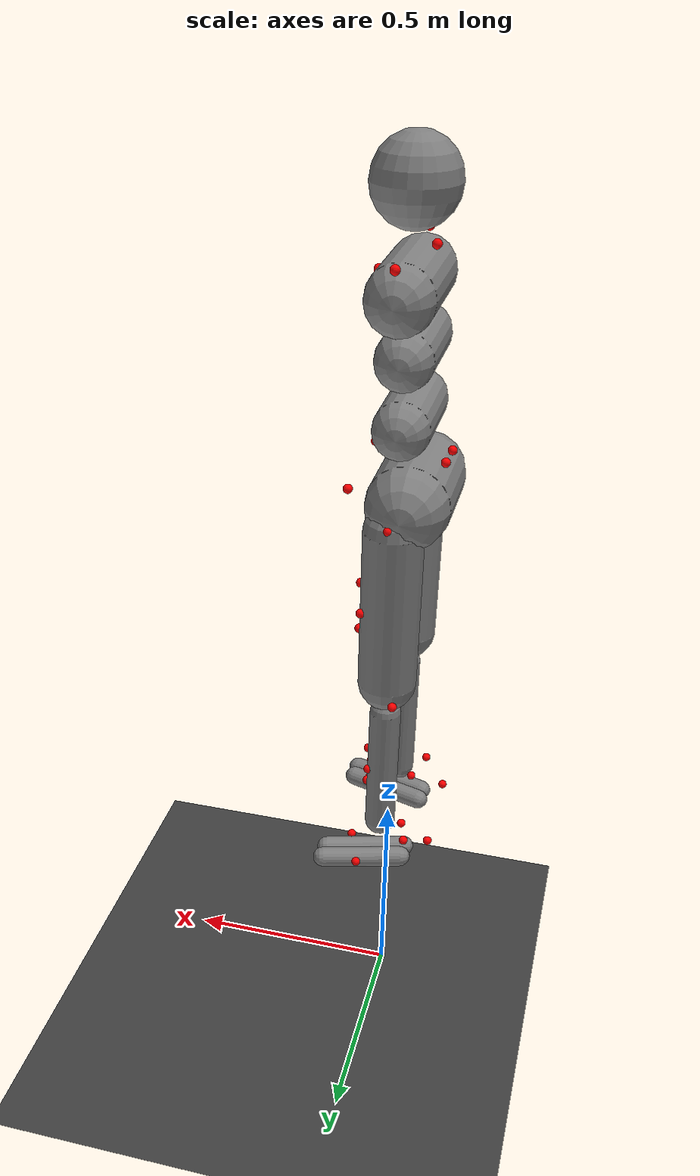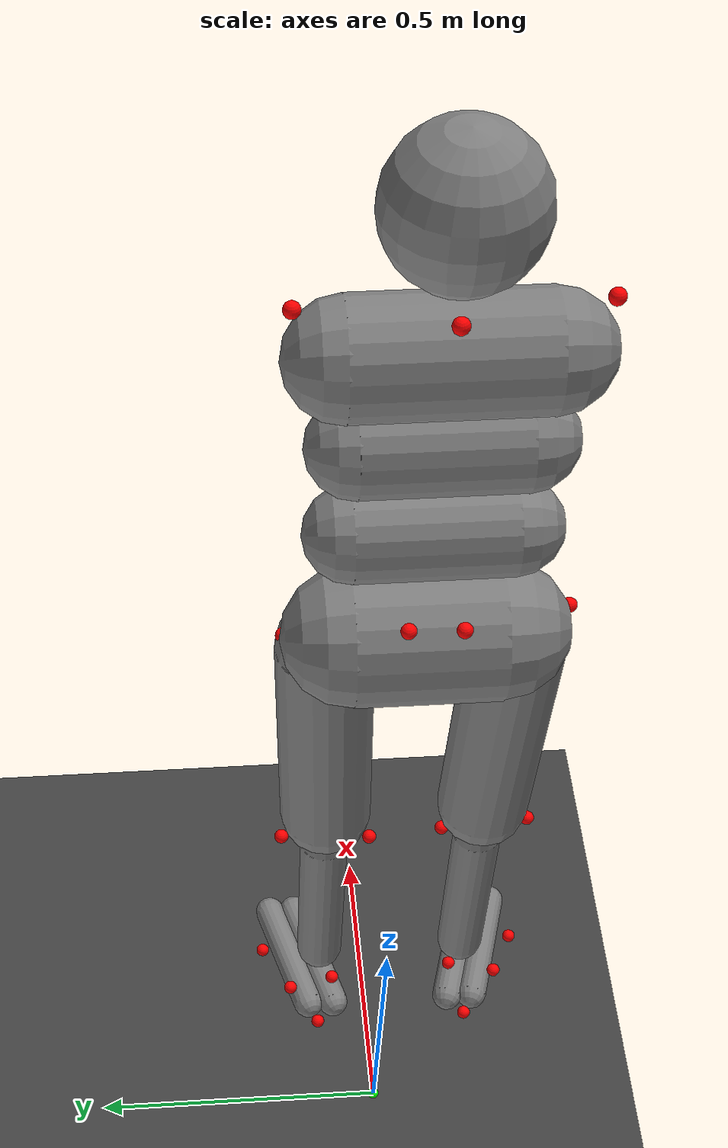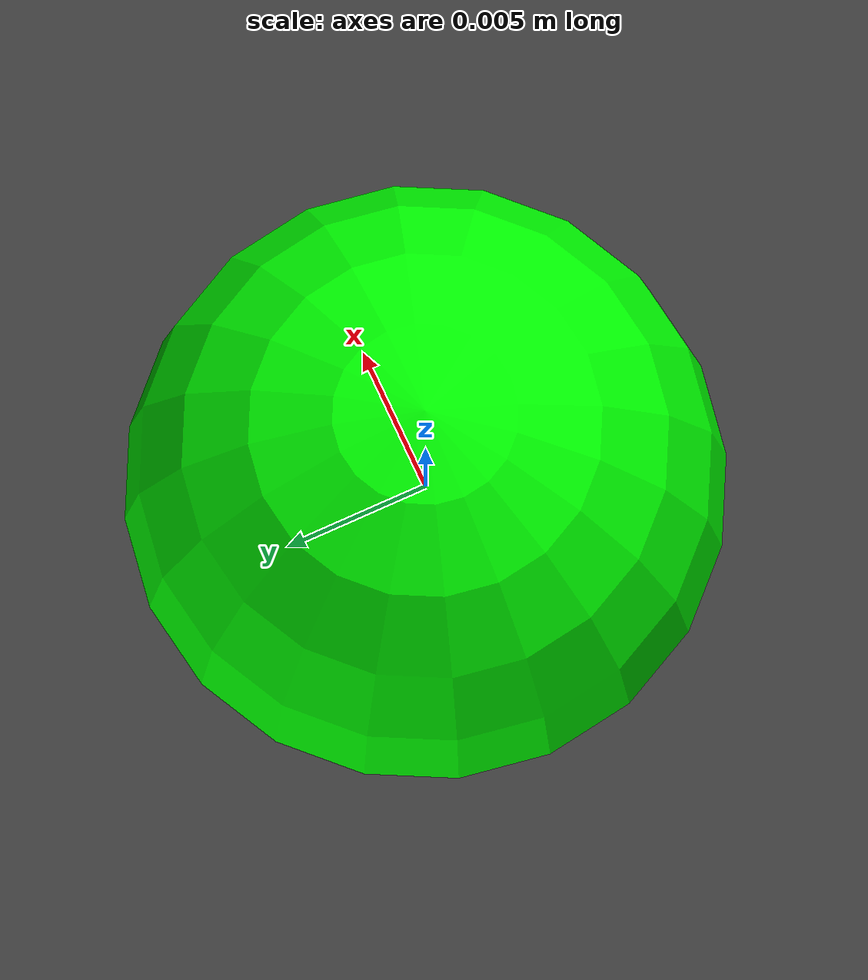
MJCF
<mujoco model="humanoid">
  <compiler settotalmass="50.0"/>
  <default>
    <default class="/"/>
    <default class="left_leg/"/>
    <default class="right_leg/"/>
  </default>
  <asset>
    <texture name="texplane" type="2d" builtin="checker" rgb1="0.20000000000000001 0.20000000000000001 0.20000000000000001" rgb2="0.29999999999999999 0.29999999999999999 0.29999999999999999" width="512" height="512"/>
    <material name="grid" class="/" texture="texplane" texrepeat="1 1" texuniform="true" reflectance="0.0"/>
  </asset>
  <worldbody>
    <geom name="floor" class="/" type="plane" conaffinity="1" size="100 100 0.20000000000000001" material="grid" pos="0 0 0"/>
    <body name="torso" pos="0.0000 0.0000 1.7908">
      <light name="top" class="/" mode="trackcom" pos="0 0 2"/>
      <camera name="back" class="/" mode="trackcom" pos="-3 0 1" xyaxes="0 -1 0 1 0 2"/>
      <camera name="side" class="/" mode="trackcom" pos="0 -3 1" xyaxes="1 0 0 0 1 2"/>
      <freejoint name="root"/>
      <geom name="torso" class="/" type="capsule" size="0.0700" fromto="0.0000 -0.1134 0.0000 0.0000 0.1134 0.0000"/>
      <site name="C7" class="/" type="sphere" rgba="1 0 0 1" size="0.0100" pos="-0.0450 0.0000 0.0779"/>
      <site name="RSHO" class="/" type="sphere" rgba="1 0 0 1" size="0.0100" pos="0.0000 -0.1700 0.0700"/>
      <site name="LSHO" class="/" type="sphere" rgba="1 0 0 1" size="0.0100" pos="0.0000 0.1700 0.0700"/>
      <site name="CLAV" class="/" type="sphere" rgba="1 0 0 1" size="0.0100" pos="0.0658 0.0000 0.0239"/>
      <geom name="upper_waist" class="/" type="capsule" size="0.0600" fromto="-0.0100 -0.0972 -0.1200 -0.0100 0.0972 -0.1200"/>
      <body name="head" pos="0.0000 0.0000 0.1900">
        <geom name="head" class="/" type="sphere" size="0.0900" pos="0.0000 0.0000 0.0000"/>
      </body>
      <camera name="egocentric" class="/" fovy="80.0" pos="0.089999999999999997 0 0" xyaxes="0 -1 0 0.10000000000000001 1 2"/>
      <body name="lower_waist" pos="-0.0100 0.0000 -0.2600" quat="1 0 -0.002 0">
        <geom name="lower_waist" class="/" type="capsule" size="0.0600" fromto="0.0000 -0.0972 0.0000 0.0000 0.0972 0.0000"/>
        <joint name="abdomen_z" class="/" type="hinge" pos="0 0 0.065000000000000002" axis="0 0 1" limited="true" solimplimit="0 0.98999999999999999 0.01" stiffness="20.0" range="-45 45" armature="0.01" damping="5.0"/>
        <joint name="abdomen_y" class="/" type="hinge" pos="0 0 0.065000000000000002" axis="0 1 0" limited="true" solimplimit="0 0.98999999999999999 0.01" stiffness="10.0" range="-75 30" armature="0.01" damping="5.0"/>
        <body name="pelvis" pos="0.0000 0.0000 -0.1650" quat="1 0 -0.002 0">
          <joint name="abdomen_x" class="/" type="hinge" pos="0 0 0.10000000000000001" axis="1 0 0" limited="true" solimplimit="0 0.98999999999999999 0.01" stiffness="10.0" range="-35 35" armature="0.01" damping="5.0"/>
          <geom name="butt" class="/" type="capsule" size="0.0900" fromto="-0.0200 -0.0934 0.0000 -0.0200 0.0934 0.0000"/>
          <site name="RASI" class="/" type="sphere" rgba="1 0 0 1" size="0.0100" pos="0.1004 -0.1416 0.0379"/>
          <site name="LASI" class="/" type="sphere" rgba="1 0 0 1" size="0.0100" pos="0.1007 0.1160 0.0363"/>
          <site name="RPSI" class="/" type="sphere" rgba="1 0 0 1" size="0.0100" pos="-0.0858 -0.0343 0.0813"/>
          <site name="LPSI" class="/" type="sphere" rgba="1 0 0 1" size="0.0100" pos="-0.0832 0.0327 0.0813"/>
          <site name="left_leg_site" class="/" size="9.9999999999999995e-07 9.9999999999999995e-07 9.9999999999999995e-07" pos="0 0.12336127164775351 -0.040000000000000001"/>
          <body pos="0.0000 0.1234 -0.0400" name="left_leg/">
            <body name="left_leg/thigh" pos="0.0000 0.0000 0.0000">
              <joint name="left_leg/hip_x" class="left_leg/" type="hinge" axis="1 0 0" limited="true" solimplimit="0 0.98999999999999999 0.01" stiffness="10.0" range="-25 5" armature="0.01" damping="5.0"/>
              <joint name="left_leg/hip_z" class="left_leg/" type="hinge" axis="0 0 1" limited="true" solimplimit="0 0.98999999999999999 0.01" stiffness="10.0" range="-60 35" armature="0.01" damping="5.0"/>
              <joint name="left_leg/hip_y" class="left_leg/" type="hinge" axis="0 1 0" limited="true" solimplimit="0 0.98999999999999999 0.01" stiffness="20.0" range="-110 20" armature="0.01" damping="5.0"/>
              <geom name="left_leg/thigh" class="left_leg/" type="capsule" size="0.0648" fromto="0.0000 0.0000 0.0000 0.0000 -0.0100 -0.3737"/>
              <site name="left_leg/LGT" class="left_leg/" type="sphere" rgba="1 0 0 1" size="0.0100" pos="0.0020 0.0533 0.0220"/>
              <site name="left_leg/LT1" class="left_leg/" type="sphere" rgba="1 0 0 1" size="0.0100" pos="0.0648 0.0000 -0.1308"/>
              <site name="left_leg/LT2" class="left_leg/" type="sphere" rgba="1 0 0 1" size="0.0100" pos="0.0561 0.0324 -0.1868"/>
              <site name="left_leg/LT3" class="left_leg/" type="sphere" rgba="1 0 0 1" size="0.0100" pos="0.0648 0.0000 -0.2429"/>
              <site name="left_leg/LT4" class="left_leg/" type="sphere" rgba="1 0 0 1" size="0.0100" pos="0.0561 -0.0324 -0.1868"/>
              <body name="left_leg/shin" pos="0.0000 -0.0100 -0.4549">
                <joint name="left_leg/knee" class="left_leg/" type="hinge" pos="0 0 0.02" axis="0 -1 0" limited="true" solimplimit="0 0.98999999999999999 0.01" stiffness="1.0" range="-160 2" armature="0.01" damping="0.2"/>
                <geom name="left_leg/shin" class="left_leg/" type="capsule" size="0.0351" fromto="0.0000 0.0000 0.0000 0.0000 0.0000 -0.3096"/>
                <site name="left_leg/LKNL" class="left_leg/" type="sphere" rgba="1 0 0 1" size="0.0100" pos="-0.0263 0.0646 0.0580"/>
                <site name="left_leg/LKNM" class="left_leg/" type="sphere" rgba="1 0 0 1" size="0.0100" pos="-0.0218 -0.0634 0.0384"/>
                <site name="left_leg/LS1" class="left_leg/" type="sphere" rgba="1 0 0 1" size="0.0100" pos="0.0351 0.0000 -0.1083"/>
                <site name="left_leg/LS2" class="left_leg/" type="sphere" rgba="1 0 0 1" size="0.0100" pos="0.0304 0.0176 -0.1548"/>
                <site name="left_leg/LS3" class="left_leg/" type="sphere" rgba="1 0 0 1" size="0.0100" pos="0.0351 0.0000 -0.2012"/>
                <site name="left_leg/LS4" class="left_leg/" type="sphere" rgba="1 0 0 1" size="0.0100" pos="0.0304 -0.0176 -0.1548"/>
                <body name="left_leg/foot" pos="0.0000 0.0000 -0.3961">
                  <joint name="left_leg/ankle_y" class="left_leg/" type="hinge" pos="0 0 0.080000000000000002" axis="0 1 0" limited="true" solimplimit="0 0.98999999999999999 0.01" stiffness="6.0" range="-50 50" armature="0.01" damping="0.2"/>
                  <joint name="left_leg/ankle_x" class="left_leg/" type="hinge" pos="0 0 0.040000000000000001" axis="1 0 0.5" limited="true" solimplimit="0 0.98999999999999999 0.01" stiffness="3.0" range="-50 50" armature="0.01" damping="0.2"/>
                  <geom name="left_leg/right_foot" class="left_leg/" type="capsule" size="0.0235" fromto="-0.0565 0.0200 0.0000 0.1196 0.0718 0.0000"/>
                  <geom name="left_leg/left_foot" class="left_leg/" type="capsule" size="0.0235" fromto="-0.0565 -0.0200 0.0000 0.1196 0.0318 0.0000"/>
                  <site name="left_leg/LANL" class="left_leg/" type="sphere" rgba="1 0 0 1" size="0.0100" pos="-0.0676 0.0506 0.0766"/>
                  <site name="left_leg/LANM" class="left_leg/" type="sphere" rgba="1 0 0 1" size="0.0100" pos="-0.0493 -0.0169 0.0705"/>
                  <site name="left_leg/LHEE" class="left_leg/" type="sphere" rgba="1 0 0 1" size="0.0100" pos="-0.1185 0.0106 0.0547"/>
                  <site name="left_leg/LM1" class="left_leg/" type="sphere" rgba="1 0 0 1" size="0.0100" pos="0.0677 -0.0046 0.0220"/>
                  <site name="left_leg/LM5" class="left_leg/" type="sphere" rgba="1 0 0 1" size="0.0100" pos="0.0355 0.0889 0.0190"/>
                  <body name="left_leg/ffp_0_0" pos="-0.0700 -0.0435 -0.0235"/>
                  <body name="left_leg/ffp_0_1" pos="-0.0700 -0.0200 -0.0235"/>
                  <body name="left_leg/ffp_0_2" pos="-0.0700 0.0035 -0.0235"/>
                  <body name="left_leg/ffp_0_3" pos="-0.0700 0.0271 -0.0235"/>
                  <body name="left_leg/ffp_1_0" pos="-0.0471 -0.0435 -0.0235"/>
                  <body name="left_leg/ffp_1_1" pos="-0.0471 -0.0200 -0.0235"/>
                  <body name="left_leg/ffp_1_2" pos="-0.0471 0.0035 -0.0235"/>
                  <body name="left_leg/ffp_1_3" pos="-0.0471 0.0271 -0.0235"/>
                  <body name="left_leg/ffp_2_0" pos="-0.0242 -0.0435 -0.0235"/>
                  <body name="left_leg/ffp_2_1" pos="-0.0242 -0.0200 -0.0235"/>
                  <body name="left_leg/ffp_2_2" pos="-0.0242 0.0035 -0.0235"/>
                  <body name="left_leg/ffp_2_3" pos="-0.0242 0.0271 -0.0235"/>
                  <body name="left_leg/ffp_3_0" pos="-0.0014 -0.0435 -0.0235"/>
                  <body name="left_leg/ffp_3_1" pos="-0.0014 -0.0200 -0.0235"/>
                  <body name="left_leg/ffp_3_2" pos="-0.0014 0.0035 -0.0235"/>
                  <body name="left_leg/ffp_3_3" pos="-0.0014 0.0271 -0.0235"/>
                  <body name="left_leg/ffp_4_0" pos="0.0215 -0.0435 -0.0235"/>
                  <body name="left_leg/ffp_4_1" pos="0.0215 -0.0200 -0.0235"/>
                  <body name="left_leg/ffp_4_2" pos="0.0215 0.0035 -0.0235"/>
                  <body name="left_leg/ffp_4_3" pos="0.0215 0.0271 -0.0235"/>
                  <body name="left_leg/ffp_5_0" pos="0.0444 -0.0435 -0.0235"/>
                  <body name="left_leg/ffp_5_1" pos="0.0444 -0.0200 -0.0235"/>
                  <body name="left_leg/ffp_5_2" pos="0.0444 0.0035 -0.0235"/>
                  <body name="left_leg/ffp_5_3" pos="0.0444 0.0271 -0.0235"/>
                  <body name="left_leg/ffp_6_0" pos="0.0673 -0.0435 -0.0235"/>
                  <body name="left_leg/ffp_6_1" pos="0.0673 -0.0200 -0.0235"/>
                  <body name="left_leg/ffp_6_2" pos="0.0673 0.0035 -0.0235"/>
                  <body name="left_leg/ffp_6_3" pos="0.0673 0.0271 -0.0235"/>
                  <body name="left_leg/ffp_7_0" pos="0.0901 -0.0435 -0.0235"/>
                  <body name="left_leg/ffp_7_1" pos="0.0901 -0.0200 -0.0235"/>
                  <body name="left_leg/ffp_7_2" pos="0.0901 0.0035 -0.0235"/>
                  <body name="left_leg/ffp_7_3" pos="0.0901 0.0271 -0.0235"/>
                </body>
              </body>
            </body>
          </body>
          <site name="right_leg_site" class="/" size="9.9999999999999995e-07 9.9999999999999995e-07 9.9999999999999995e-07" pos="0 -0.12336127164775351 -0.040000000000000001"/>
          <body pos="0.0000 -0.1234 -0.0400" name="right_leg/">
            <body name="right_leg/thigh" pos="0.0000 0.0000 0.0000">
              <joint name="right_leg/hip_x" class="right_leg/" type="hinge" axis="1 0 0" limited="true" solimplimit="0 0.98999999999999999 0.01" stiffness="10.0" range="-25 5" armature="0.01" damping="5.0"/>
              <joint name="right_leg/hip_z" class="right_leg/" type="hinge" axis="0 0 1" limited="true" solimplimit="0 0.98999999999999999 0.01" stiffness="10.0" range="-60 35" armature="0.01" damping="5.0"/>
              <joint name="right_leg/hip_y" class="right_leg/" type="hinge" axis="0 1 0" limited="true" solimplimit="0 0.98999999999999999 0.01" stiffness="20.0" range="-110 20" armature="0.01" damping="5.0"/>
              <geom name="right_leg/thigh" class="right_leg/" type="capsule" size="0.0648" fromto="0.0000 0.0000 0.0000 0.0000 0.0100 -0.3737"/>
              <site name="right_leg/RGT" class="right_leg/" type="sphere" rgba="1 0 0 1" size="0.0100" pos="0.0237 -0.0660 0.0286"/>
              <site name="right_leg/RT1" class="right_leg/" type="sphere" rgba="1 0 0 1" size="0.0100" pos="0.0648 0.0000 -0.1308"/>
              <site name="right_leg/RT2" class="right_leg/" type="sphere" rgba="1 0 0 1" size="0.0100" pos="0.0561 0.0324 -0.1868"/>
              <site name="right_leg/RT3" class="right_leg/" type="sphere" rgba="1 0 0 1" size="0.0100" pos="0.0648 0.0000 -0.2429"/>
              <site name="right_leg/RT4" class="right_leg/" type="sphere" rgba="1 0 0 1" size="0.0100" pos="0.0561 -0.0324 -0.1868"/>
              <body name="right_leg/shin" pos="0.0000 0.0100 -0.4549">
                <joint name="right_leg/knee" class="right_leg/" type="hinge" pos="0 0 0.02" axis="0 -1 0" limited="true" solimplimit="0 0.98999999999999999 0.01" stiffness="1.0" range="-160 2" armature="0.01" damping="0.2"/>
                <geom name="right_leg/shin" class="right_leg/" type="capsule" size="0.0351" fromto="0.0000 0.0000 0.0000 0.0000 0.0000 -0.3096"/>
                <site name="right_leg/RKNL" class="right_leg/" type="sphere" rgba="1 0 0 1" size="0.0100" pos="-0.0203 -0.0637 0.0641"/>
                <site name="right_leg/RKNM" class="right_leg/" type="sphere" rgba="1 0 0 1" size="0.0100" pos="-0.0066 0.0557 0.0290"/>
                <site name="right_leg/RS1" class="right_leg/" type="sphere" rgba="1 0 0 1" size="0.0100" pos="0.0351 0.0000 -0.1083"/>
                <site name="right_leg/RS2" class="right_leg/" type="sphere" rgba="1 0 0 1" size="0.0100" pos="0.0304 0.0176 -0.1548"/>
                <site name="right_leg/RS3" class="right_leg/" type="sphere" rgba="1 0 0 1" size="0.0100" pos="0.0351 0.0000 -0.2012"/>
                <site name="right_leg/RS4" class="right_leg/" type="sphere" rgba="1 0 0 1" size="0.0100" pos="0.0304 -0.0176 -0.1548"/>
                <body name="right_leg/foot" pos="0.0000 0.0000 -0.3961">
                  <joint name="right_leg/ankle_y" class="right_leg/" type="hinge" pos="0 0 0.080000000000000002" axis="0 1 0" limited="true" solimplimit="0 0.98999999999999999 0.01" stiffness="6.0" range="-50 50" armature="0.01" damping="0.2"/>
                  <joint name="right_leg/ankle_x" class="right_leg/" type="hinge" pos="0 0 0.040000000000000001" axis="1 0 0.5" limited="true" solimplimit="0 0.98999999999999999 0.01" stiffness="3.0" range="-50 50" armature="0.01" damping="0.2"/>
                  <geom name="right_leg/right_foot" class="right_leg/" type="capsule" size="0.0235" fromto="-0.0565 -0.0200 0.0000 0.1196 -0.0718 0.0000"/>
                  <geom name="right_leg/left_foot" class="right_leg/" type="capsule" size="0.0235" fromto="-0.0565 0.0200 0.0000 0.1196 -0.0318 0.0000"/>
                  <site name="right_leg/RANL" class="right_leg/" type="sphere" rgba="1 0 0 1" size="0.0100" pos="-0.0608 -0.0471 0.0850"/>
                  <site name="right_leg/RANM" class="right_leg/" type="sphere" rgba="1 0 0 1" size="0.0100" pos="-0.0360 0.0207 0.0711"/>
                  <site name="right_leg/RHEE" class="right_leg/" type="sphere" rgba="1 0 0 1" size="0.0100" pos="-0.1137 0.0037 0.0475"/>
                  <site name="right_leg/RM1" class="right_leg/" type="sphere" rgba="1 0 0 1" size="0.0100" pos="0.0767 -0.0057 0.0220"/>
                  <site name="right_leg/RM5" class="right_leg/" type="sphere" rgba="1 0 0 1" size="0.0100" pos="0.0382 -0.0929 0.0170"/>
                  <body name="right_leg/ffp_0_0" pos="-0.0700 -0.0435 -0.0235"/>
                  <body name="right_leg/ffp_0_1" pos="-0.0700 -0.0200 -0.0235"/>
                  <body name="right_leg/ffp_0_2" pos="-0.0700 0.0035 -0.0235"/>
                  <body name="right_leg/ffp_0_3" pos="-0.0700 0.0271 -0.0235"/>
                  <body name="right_leg/ffp_1_0" pos="-0.0471 -0.0435 -0.0235"/>
                  <body name="right_leg/ffp_1_1" pos="-0.0471 -0.0200 -0.0235"/>
                  <body name="right_leg/ffp_1_2" pos="-0.0471 0.0035 -0.0235"/>
                  <body name="right_leg/ffp_1_3" pos="-0.0471 0.0271 -0.0235"/>
                  <body name="right_leg/ffp_2_0" pos="-0.0242 -0.0435 -0.0235"/>
                  <body name="right_leg/ffp_2_1" pos="-0.0242 -0.0200 -0.0235"/>
                  <body name="right_leg/ffp_2_2" pos="-0.0242 0.0035 -0.0235"/>
                  <body name="right_leg/ffp_2_3" pos="-0.0242 0.0271 -0.0235"/>
                  <body name="right_leg/ffp_3_0" pos="-0.0014 -0.0435 -0.0235"/>
                  <body name="right_leg/ffp_3_1" pos="-0.0014 -0.0200 -0.0235"/>
                  <body name="right_leg/ffp_3_2" pos="-0.0014 0.0035 -0.0235"/>
                  <body name="right_leg/ffp_3_3" pos="-0.0014 0.0271 -0.0235"/>
                  <body name="right_leg/ffp_4_0" pos="0.0215 -0.0435 -0.0235"/>
                  <body name="right_leg/ffp_4_1" pos="0.0215 -0.0200 -0.0235"/>
                  <body name="right_leg/ffp_4_2" pos="0.0215 0.0035 -0.0235"/>
                  <body name="right_leg/ffp_4_3" pos="0.0215 0.0271 -0.0235"/>
                  <body name="right_leg/ffp_5_0" pos="0.0444 -0.0435 -0.0235"/>
                  <body name="right_leg/ffp_5_1" pos="0.0444 -0.0200 -0.0235"/>
                  <body name="right_leg/ffp_5_2" pos="0.0444 0.0035 -0.0235"/>
                  <body name="right_leg/ffp_5_3" pos="0.0444 0.0271 -0.0235"/>
                  <body name="right_leg/ffp_6_0" pos="0.0673 -0.0435 -0.0235"/>
                  <body name="right_leg/ffp_6_1" pos="0.0673 -0.0200 -0.0235"/>
                  <body name="right_leg/ffp_6_2" pos="0.0673 0.0035 -0.0235"/>
                  <body name="right_leg/ffp_6_3" pos="0.0673 0.0271 -0.0235"/>
                  <body name="right_leg/ffp_7_0" pos="0.0901 -0.0435 -0.0235"/>
                  <body name="right_leg/ffp_7_1" pos="0.0901 -0.0200 -0.0235"/>
                  <body name="right_leg/ffp_7_2" pos="0.0901 0.0035 -0.0235"/>
                  <body name="right_leg/ffp_7_3" pos="0.0901 0.0271 -0.0235"/>
                </body>
              </body>
            </body>
          </body>
        </body>
      </body>
    </body>
    <body name="m0" mocap="true" pos="0 0 0">
      <geom name="m0" class="/" type="sphere" size="0.01" rgba="0 1 0 1" mass="0.0"/>
    </body>
    <body name="m1" mocap="true" pos="0 0 0">
      <geom name="m1" class="/" type="sphere" size="0.01" rgba="0 1 0 1" mass="0.0"/>
    </body>
    <body name="m2" mocap="true" pos="0 0 0">
      <geom name="m2" class="/" type="sphere" size="0.01" rgba="0 1 0 1" mass="0.0"/>
    </body>
    <body name="m3" mocap="true" pos="0 0 0">
      <geom name="m3" class="/" type="sphere" size="0.01" rgba="0 1 0 1" mass="0.0"/>
    </body>
    <body name="m4" mocap="true" pos="0 0 0">
      <geom name="m4" class="/" type="sphere" size="0.01" rgba="0 1 0 1" mass="0.0"/>
    </body>
    <body name="m5" mocap="true" pos="0 0 0">
      <geom name="m5" class="/" type="sphere" size="0.01" rgba="0 1 0 1" mass="0.0"/>
    </body>
    <body name="m6" mocap="true" pos="0 0 0">
      <geom name="m6" class="/" type="sphere" size="0.01" rgba="0 1 0 1" mass="0.0"/>
    </body>
    <body name="m7" mocap="true" pos="0 0 0">
      <geom name="m7" class="/" type="sphere" size="0.01" rgba="0 1 0 1" mass="0.0"/>
    </body>
    <body name="m8" mocap="true" pos="0 0 0">
      <geom name="m8" class="/" type="sphere" size="0.01" rgba="0 1 0 1" mass="0.0"/>
    </body>
    <body name="m9" mocap="true" pos="0 0 0">
      <geom name="m9" class="/" type="sphere" size="0.01" rgba="0 1 0 1" mass="0.0"/>
    </body>
    <body name="m10" mocap="true" pos="0 0 0">
      <geom name="m10" class="/" type="sphere" size="0.01" rgba="0 1 0 1" mass="0.0"/>
    </body>
    <body name="m11" mocap="true" pos="0 0 0">
      <geom name="m11" class="/" type="sphere" size="0.01" rgba="0 1 0 1" mass="0.0"/>
    </body>
    <body name="m12" mocap="true" pos="0 0 0">
      <geom name="m12" class="/" type="sphere" size="0.01" rgba="0 1 0 1" mass="0.0"/>
    </body>
    <body name="m13" mocap="true" pos="0 0 0">
      <geom name="m13" class="/" type="sphere" size="0.01" rgba="0 1 0 1" mass="0.0"/>
    </body>
    <body name="m14" mocap="true" pos="0 0 0">
      <geom name="m14" class="/" type="sphere" size="0.01" rgba="0 1 0 1" mass="0.0"/>
    </body>
    <body name="m15" mocap="true" pos="0 0 0">
      <geom name="m15" class="/" type="sphere" size="0.01" rgba="0 1 0 1" mass="0.0"/>
    </body>
    <body name="m16" mocap="true" pos="0 0 0">
      <geom name="m16" class="/" type="sphere" size="0.01" rgba="0 1 0 1" mass="0.0"/>
    </body>
    <body name="m17" mocap="true" pos="0 0 0">
      <geom name="m17" class="/" type="sphere" size="0.01" rgba="0 1 0 1" mass="0.0"/>
    </body>
    <body name="m18" mocap="true" pos="0 0 0">
      <geom name="m18" class="/" type="sphere" size="0.01" rgba="0 1 0 1" mass="0.0"/>
    </body>
    <body name="m19" mocap="true" pos="0 0 0">
      <geom name="m19" class="/" type="sphere" size="0.01" rgba="0 1 0 1" mass="0.0"/>
    </body>
    <body name="m20" mocap="true" pos="0 0 0">
      <geom name="m20" class="/" type="sphere" size="0.01" rgba="0 1 0 1" mass="0.0"/>
    </body>
    <body name="m21" mocap="true" pos="0 0 0">
      <geom name="m21" class="/" type="sphere" size="0.01" rgba="0 1 0 1" mass="0.0"/>
    </body>
    <body name="m22" mocap="true" pos="0 0 0">
      <geom name="m22" class="/" type="sphere" size="0.01" rgba="0 1 0 1" mass="0.0"/>
    </body>
    <body name="m23" mocap="true" pos="0 0 0">
      <geom name="m23" class="/" type="sphere" size="0.01" rgba="0 1 0 1" mass="0.0"/>
    </body>
    <body name="m24" mocap="true" pos="0 0 0">
      <geom name="m24" class="/" type="sphere" size="0.01" rgba="0 1 0 1" mass="0.0"/>
    </body>
    <body name="m25" mocap="true" pos="0 0 0">
      <geom name="m25" class="/" type="sphere" size="0.01" rgba="0 1 0 1" mass="0.0"/>
    </body>
    <body name="m26" mocap="true" pos="0 0 0">
      <geom name="m26" class="/" type="sphere" size="0.01" rgba="0 1 0 1" mass="0.0"/>
    </body>
    <body name="m27" mocap="true" pos="0 0 0">
      <geom name="m27" class="/" type="sphere" size="0.01" rgba="0 1 0 1" mass="0.0"/>
    </body>
    <body name="m28" mocap="true" pos="0 0 0">
      <geom name="m28" class="/" type="sphere" size="0.01" rgba="0 1 0 1" mass="0.0"/>
    </body>
    <body name="m29" mocap="true" pos="0 0 0">
      <geom name="m29" class="/" type="sphere" size="0.01" rgba="0 1 0 1" mass="0.0"/>
    </body>
    <body name="m30" mocap="true" pos="0 0 0">
      <geom name="m30" class="/" type="sphere" size="0.01" rgba="0 1 0 1" mass="0.0"/>
    </body>
    <body name="m31" mocap="true" pos="0 0 0">
      <geom name="m31" class="/" type="sphere" size="0.01" rgba="0 1 0 1" mass="0.0"/>
    </body>
    <body name="m32" mocap="true" pos="0 0 0">
      <geom name="m32" class="/" type="sphere" size="0.01" rgba="0 1 0 1" mass="0.0"/>
    </body>
    <body name="m33" mocap="true" pos="0 0 0">
      <geom name="m33" class="/" type="sphere" size="0.01" rgba="0 1 0 1" mass="0.0"/>
    </body>
    <body name="m34" mocap="true" pos="0 0 0">
      <geom name="m34" class="/" type="sphere" size="0.01" rgba="0 1 0 1" mass="0.0"/>
    </body>
    <body name="m35" mocap="true" pos="0 0 0">
      <geom name="m35" class="/" type="sphere" size="0.01" rgba="0 1 0 1" mass="0.0"/>
    </body>
    <body name="m36" mocap="true" pos="0 0 0">
      <geom name="m36" class="/" type="sphere" size="0.01" rgba="0 1 0 1" mass="0.0"/>
    </body>
    <body name="m37" mocap="true" pos="0 0 0">
      <geom name="m37" class="/" type="sphere" size="0.01" rgba="0 1 0 1" mass="0.0"/>
    </body>
    <body name="m38" mocap="true" pos="0 0 0">
      <geom name="m38" class="/" type="sphere" size="0.01" rgba="0 1 0 1" mass="0.0"/>
    </body>
    <body name="m39" mocap="true" pos="0 0 0">
      <geom name="m39" class="/" type="sphere" size="0.01" rgba="0 1 0 1" mass="0.0"/>
    </body>
  </worldbody>
  <equality>
    <weld name="world_root" class="/" active="false" body1="torso" relpose="0 0 -2 1 0 0 0"/>
    <joint name="abdomen_y" class="/" active="true" joint1="abdomen_y"/>
    <joint name="abdomen_z" class="/" active="true" joint1="abdomen_z"/>
    <joint name="abdomen_x" class="/" active="true" joint1="abdomen_x"/>
  </equality>
  <actuator>
    <motor name="abdomen_z" class="/" gear="40" joint="abdomen_z"/>
    <motor name="abdomen_y" class="/" gear="40" joint="abdomen_y"/>
    <motor name="abdomen_x" class="/" gear="40" joint="abdomen_x"/>
    <motor name="left_leg/hip_x" class="left_leg/" gear="40" joint="left_leg/hip_x"/>
    <motor name="left_leg/hip_z" class="left_leg/" gear="40" joint="left_leg/hip_z"/>
    <motor name="left_leg/hip_y" class="left_leg/" gear="120" joint="left_leg/hip_y"/>
    <motor name="left_leg/knee" class="left_leg/" gear="80" joint="left_leg/knee"/>
    <motor name="left_leg/ankle_y" class="left_leg/" gear="20" joint="left_leg/ankle_y"/>
    <motor name="left_leg/ankle_x" class="left_leg/" gear="20" joint="left_leg/ankle_x"/>
    <motor name="right_leg/hip_x" class="right_leg/" gear="40" joint="right_leg/hip_x"/>
    <motor name="right_leg/hip_z" class="right_leg/" gear="40" joint="right_leg/hip_z"/>
    <motor name="right_leg/hip_y" class="right_leg/" gear="120" joint="right_leg/hip_y"/>
    <motor name="right_leg/knee" class="right_leg/" gear="80" joint="right_leg/knee"/>
    <motor name="right_leg/ankle_y" class="right_leg/" gear="20" joint="right_leg/ankle_y"/>
    <motor name="right_leg/ankle_x" class="right_leg/" gear="20" joint="right_leg/ankle_x"/>
  </actuator>
</mujoco>
